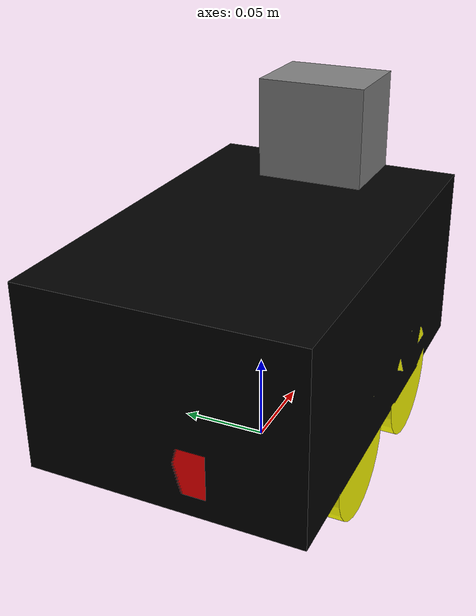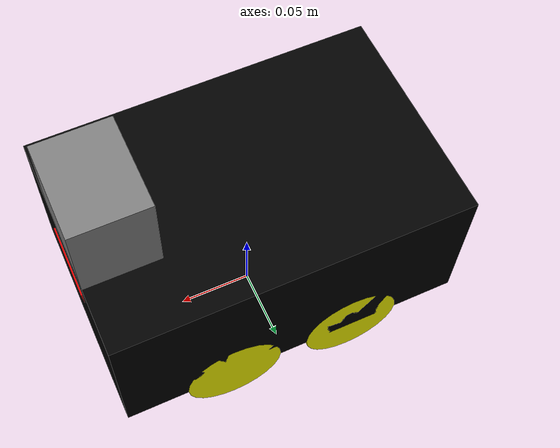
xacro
<?xml version="1.0"?>
<robot name="my_robot" xmlns:xacro="http://www.ros.org/wiki/xacro">

    <xacro:include filename="common_properties.xacro"/>
    <xacro:include filename="mobile_base.xacro"/>
    <xacro:include filename="mobile_base_gazebo.xacro"/>
    <xacro:include filename="camera.xacro"/>
    <xacro:include filename="ultrasonic_front.xacro"/>
    <xacro:include filename="ultrasonic_rear.xacro"/>
    <xacro:include filename="mpu_6050.xacro"/>

</robot>

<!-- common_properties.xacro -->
<robot xmlns:xacro="http://www.ros.org/wiki/xacro">

    <material name="blue">
        <color rgba="0 0 0.5 1" />
    </material>

    <material name="grey">
        <color rgba="0.5 0.5 0.5 1" />
    </material>

    <material name="black">
        <color rgba="0 0 0 1"/>
    </material>

    <material name="yellow">
        <color rgba="1 1 0 1"/>
    </material>

    <material name="red">
        <color rgba="1 0 0 1"/>
    </material>

    <xacro:macro name="box_inertia" params="m x y z o_xyz o_rpy">
        <inertial>
            <mass value="${m}" />
            <origin xyz="${o_xyz}" rpy="${o_rpy}" />
            <inertia ixx="${(m/12) * (y*y + z*z)}" ixy="0" ixz="0"
                     iyy="${(m/12) * (x*x + z*z)}" iyz="0"
                     izz="${(m/12) * (x*x + y*y)}" />
        </inertial>
    </xacro:macro>

    <xacro:macro name="cylinder_inertia" params="m r l o_xyz o_rpy">
        <inertial>
            <mass value="${m}" />
            <origin xyz="${o_xyz}" rpy="${o_rpy}" />
            <inertia ixx="${(m/12) * (3*r*r + l*l)}" ixy="0" ixz="0"
                     iyy="${(m/12) * (3*r*r + l*l)}" iyz="0"
                     izz="${(m/2) * (r*r)}" />
        </inertial>
    </xacro:macro>

    <xacro:macro name="sphere_inertia" params="m r o_xyz o_rpy">
        <inertial>
            <mass value="${m}" />
            <origin xyz="${o_xyz}" rpy="${o_rpy}" />
            <inertia ixx="${(2/5) * m * r * r}" ixy="0" ixz="0"
                     iyy="${(2/5) * m * r * r}" iyz="0"
                     izz="${(2/5) * m * r * r}" />
        </inertial>
    </xacro:macro>

</robot>

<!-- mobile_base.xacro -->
<robot xmlns:xacro="http://www.ros.org/wiki/xacro">

    <xacro:property name="base_length" value="0.235" />
    <xacro:property name="base_width" value="0.152" />
    <xacro:property name="base_height" value="0.105" />
    <xacro:property name="wheel_radius" value="0.033" />
    <xacro:property name="wheel_length" value="0.026" />

    <!-- Measured wheel centre locations for Elegoo Smart Robot Car Kit v4.0 -->
    <xacro:property name="wheel_center_from_ends" value="0.075" />
    <xacro:property name="wheel_x_front" value="${base_length/2.0 - wheel_center_from_ends}" />
    <xacro:property name="wheel_x_rear"  value="${-base_length/2.0 + wheel_center_from_ends}" />
    <xacro:property name="wheel_y" value="${base_width/2.0 - wheel_length/2.0}" />

    <xacro:property name="base_clearance" value="0.016" />
    <xacro:property name="wheel_z" value="${wheel_radius - base_clearance}" />
    <link name="base_footprint" />

    <link name="base_link">
        <visual>
            <geometry>
                <box size="${base_length} ${base_width} ${base_height}" />
            </geometry>
            <origin xyz="0 0 ${(base_height / 2.0) + 0.016}" rpy="0 0 0" />
            <material name="black" />
        </visual>

        <xacro:box_inertia m="5.0" x="${base_length}" y="${base_width}" z="${base_height}"
                           o_xyz="0 0 ${(base_height / 2.0) + 0.016}" o_rpy="0 0 0" />

        <collision>
            <geometry>
                <box size="${base_length} ${base_width} ${base_height}" />
            </geometry>
            <origin xyz="0 0 ${(base_height / 2.0) + 0.016}" rpy="0 0 0" />
        </collision>
    </link>

    <xacro:macro name="wheel_link" params="name">
        <link name="${name}">
            <visual>
                <geometry>
                    <cylinder radius="${wheel_radius}" length="${wheel_length}" />
                </geometry>
                <origin xyz="0 0 0" rpy="${pi / 2.0} 0 0" />
                <material name="yellow" />
            </visual>

            <xacro:cylinder_inertia m="1.0" r="${wheel_radius}" l="${wheel_length}"
                                    o_xyz="0 0 0" o_rpy="${pi / 2.0} 0 0" />

            <collision>
                <geometry>
                    <sphere radius="${wheel_radius}"/>
                </geometry>
                <origin xyz="0 0 0" rpy="0 0 0" />
            </collision>

        </link>
    </xacro:macro>

    <xacro:wheel_link name="front_left_wheel_link" />
    <xacro:wheel_link name="front_right_wheel_link" />
    <xacro:wheel_link name="rear_left_wheel_link" />
    <xacro:wheel_link name="rear_right_wheel_link" />

    <joint name="base_joint" type="fixed">
        <parent link="base_footprint" />
        <child link="base_link" />
        <origin xyz="0 0 ${base_clearance}" rpy="0 0 0"/>
    </joint>

    <joint name="front_left_wheel_joint" type="continuous">
        <parent link="base_link" />
        <child link="front_left_wheel_link" />
        <origin xyz="${wheel_x_front} ${wheel_y} ${wheel_z}" rpy="0 0 0" />
        <axis xyz="0 1 0" />
    </joint>

    <joint name="front_right_wheel_joint" type="continuous">
        <parent link="base_link" />
        <child link="front_right_wheel_link" />
        <origin xyz="${wheel_x_front} -${wheel_y} ${wheel_z}" rpy="0 0 0" />
        <axis xyz="0 1 0" />
    </joint>

    <joint name="rear_left_wheel_joint" type="continuous">
        <parent link="base_link" />
        <child link="rear_left_wheel_link" />
        <origin xyz="${wheel_x_rear}  ${wheel_y} ${wheel_z}" rpy="0 0 0" />
        <axis xyz="0 1 0" />
    </joint>

    <joint name="rear_right_wheel_joint" type="continuous">
        <parent link="base_link" />
        <child link="rear_right_wheel_link" />
        <origin xyz="${wheel_x_rear} -${wheel_y} ${wheel_z}" rpy="0 0 0" />
        <axis xyz="0 1 0" />
    </joint>

</robot>

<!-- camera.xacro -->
<robot xmlns:xacro="http://www.ros.org/wiki/xacro">

    <xacro:property name="camera_length" value="0.05" />
    <xacro:property name="camera_width" value="0.064" />
    <xacro:property name="camera_height" value="0.059" />

    <link name="camera_link">
        <visual>
            <geometry>
                <box size="${camera_length} ${camera_width} ${camera_height}" />
            </geometry>
            <material name="grey" />
        </visual>
        <collision>
            <geometry>
                <box size="${camera_length} ${camera_width} ${camera_height}" />
            </geometry>
        </collision>
        <xacro:box_inertia m="0.1" x="${camera_length}" y="${camera_width}" z="${camera_height}"
                           o_xyz="0 0 0" o_rpy="0 0 0" />
    </link>

    <joint name="base_camera_joint" type="fixed">
        <parent link="base_link" />
        <child link="camera_link" />
        <origin xyz="${(base_length/2.0) - (camera_length/2.0)} 0 ${base_height + base_clearance + (camera_height/2.0)}" rpy="0 0 0" />
    </joint>

    <link name="camera_link_optical" />

    <joint name="camera_optical_joint" type="fixed">
        <origin xyz="0 0 0" rpy="${-pi/2} 0 ${-pi/2}"/>
        <parent link="camera_link"/>
        <child link="camera_link_optical"/>
    </joint>

    <gazebo reference="camera_link">
        <sensor name="camera" type="camera">
            <camera>
                <horizontal_fov>1.3962634</horizontal_fov>
                <image>
                    <width>640</width>
                    <height>480</height>
                    <format>R8G8B8</format>
                </image>
                <clip>
                    <near>0.1</near>
                    <far>15</far>
                </clip>
                <noise>
                    <type>gaussian</type>
                    <mean>0.0</mean>
                    <stddev>0.007</stddev>
                </noise>
                <optical_frame_id>camera_link_optical</optical_frame_id>
                <camera_info_topic>camera/camera_info</camera_info_topic>
            </camera>
            <always_on>1</always_on>
            <update_rate>20</update_rate>
            <visualize>true</visualize>
            <topic>camera/image_raw</topic>

        </sensor>
    </gazebo>

</robot>

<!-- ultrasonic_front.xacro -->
<robot xmlns:xacro="http://www.ros.org/wiki/xacro">

    <xacro:property name="ultra_front_length" value="0.02"/>
    <xacro:property name="ultra_front_width"  value="0.05"/>
    <xacro:property name="ultra_front_height" value="0.025"/>
    <xacro:property name="ultra_front_min_range" value="0.02"/>
    <xacro:property name="ultra_front_max_range" value="4.25"/>
    <xacro:property name="ultra_front_range_resolution" value="0.01"/>
    <xacro:property name="ultra_front_half_fov_h" value="${60.0 * pi / 180.0}"/>

    <link name="ultrasonic_front_link">
        <visual>
            <geometry>
                <box size="${ultra_front_length} ${ultra_front_width} ${ultra_front_height}"/>
            </geometry>
            <material name="red"/>
        </visual>

        <collision>
            <geometry>
                <box size="${ultra_front_length} ${ultra_front_width} ${ultra_front_height}"/>
            </geometry>
        </collision>

        <xacro:box_inertia
            m="0.02"
            x="${ultra_front_length}"
            y="${ultra_front_width}"
            z="${ultra_front_height}"
            o_xyz="0 0 0"
            o_rpy="0 0 0" />
    </link>

    <joint name="base_ultrasonic_front_joint" type="fixed">
        <parent link="base_link"/>
        <child link="ultrasonic_front_link"/>
        <origin xyz="${(base_length/2.0) - (ultra_front_length/2.0)} 0 0.089" rpy="0 0.087266 0"/>
    </joint>

    <gazebo reference="ultrasonic_front_link">
        <sensor name="ultrasonic_front" type="gpu_lidar">
            <always_on>true</always_on>
            <update_rate>20</update_rate>
            <visualize>true</visualize>

            <lidar>
                <scan>
                    <horizontal>
                        <samples>1</samples>
                        <resolution>1</resolution>
                        <min_angle>${-ultra_front_half_fov_h}</min_angle>
                        <max_angle>${ultra_front_half_fov_h}</max_angle>
                    </horizontal>

                </scan>

                <range>
                    <min>${ultra_front_min_range}</min>
                    <max>${ultra_front_max_range}</max>
                    <resolution>${ultra_front_range_resolution}</resolution>
                </range>
                <noise>
                    <type>gaussian</type>
                    <mean>0.0</mean>
                    <stddev>0.01</stddev>
                </noise>
            </lidar>

            <topic>/ultrasonic_front</topic>

        </sensor>
    </gazebo>

</robot>

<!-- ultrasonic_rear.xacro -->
<robot xmlns:xacro="http://www.ros.org/wiki/xacro">

    <xacro:property name="ultra_rear_length" value="0.02"/>
    <xacro:property name="ultra_rear_width"  value="0.05"/>
    <xacro:property name="ultra_rear_height" value="0.025"/>
    <xacro:property name="ultra_rear_min_range" value="0.02"/>
    <xacro:property name="ultra_rear_max_range" value="4.25"/>
    <xacro:property name="ultra_rear_range_resolution" value="0.01"/>

    <link name="ultrasonic_rear_link">
        <visual>
            <geometry>
                <box size="${ultra_rear_length} ${ultra_rear_width} ${ultra_rear_height}"/>
            </geometry>
            <material name="red"/>
        </visual>

        <collision>
            <geometry>
                <box size="${ultra_rear_length} ${ultra_rear_width} ${ultra_rear_height}"/>
            </geometry>
        </collision>

        <xacro:box_inertia
            m="0.02"
            x="${ultra_rear_length}"
            y="${ultra_rear_width}"
            z="${ultra_rear_height}"
            o_xyz="0 0 0"
            o_rpy="0 0 0" />
    </link>

    <joint name="base_ultrasonic_rear_joint" type="fixed">
        <parent link="base_link"/>
        <child link="ultrasonic_rear_link"/>
        <origin xyz="${-(base_length/2.0) + (ultra_rear_length/2.0)} 0 0.04" rpy="0 0 3.14159"/>
    </joint>

    <gazebo reference="ultrasonic_rear_link">
        <sensor name="ultrasonic_rear" type="gpu_lidar">
            <always_on>true</always_on>
            <update_rate>20</update_rate>
            <visualize>true</visualize>

            <lidar>
                <scan>
                    <horizontal>
                        <samples>1</samples>
                        <resolution>1</resolution>
                        <min_angle>0</min_angle>
                        <max_angle>0</max_angle>
                    </horizontal>
                    <vertical>
                        <samples>1</samples>
                        <resolution>1</resolution>
                        <min_angle>0</min_angle>
                        <max_angle>0</max_angle>
                    </vertical>
                </scan>

                <range>
                    <min>${ultra_rear_min_range}</min>
                    <max>${ultra_rear_max_range}</max>
                    <resolution>${ultra_rear_range_resolution}</resolution>
                </range>
                <noise>
                    <type>gaussian</type>
                    <mean>0.0</mean>
                    <stddev>0.01</stddev>
                </noise>
            </lidar>

            <topic>/ultrasonic_rear</topic>

        </sensor>
    </gazebo>

</robot>

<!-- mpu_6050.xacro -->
<robot xmlns:xacro="http://www.ros.org/wiki/xacro">

    <xacro:property name="mpu_length" value="0.02"/>
    <xacro:property name="mpu_width" value="0.015"/>
    <xacro:property name="mpu_height" value="0.004"/>
    <xacro:property name="mpu_mass" value="0.005"/>
    <xacro:property name="mpu_topic" value="/imu"/>

    <link name="mpu_6050_link">
        <visual>
            <geometry>
                <box size="${mpu_length} ${mpu_width} ${mpu_height}"/>
            </geometry>
            <material name="grey"/>
        </visual>

        <collision>
            <geometry>
                <box size="${mpu_length} ${mpu_width} ${mpu_height}"/>
            </geometry>
        </collision>

        <xacro:box_inertia
            m="${mpu_mass}"
            x="${mpu_length}"
            y="${mpu_width}"
            z="${mpu_height}"
            o_xyz="0 0 0"
            o_rpy="0 0 0" />
    </link>

    <joint name="base_mpu_6050_joint" type="fixed">
        <parent link="base_link"/>
        <child link="mpu_6050_link"/>
        <origin xyz="0 ${ -(3 * mpu_width) } 0.07" rpy="0 0 0"/>
    </joint>

    <gazebo reference="mpu_6050_link">
        <sensor name="mpu_6050" type="imu">
            <always_on>true</always_on>
            <update_rate>100</update_rate>
            <visualize>false</visualize>
            <topic>${mpu_topic}</topic>

            <imu>
                <angular_velocity>
                    <x>
                        <noise type="gaussian">
                            <mean>0.0</mean>
                            <stddev>0.0002</stddev>
                        </noise>
                    </x>
                    <y>
                        <noise type="gaussian">
                            <mean>0.0</mean>
                            <stddev>0.0002</stddev>
                        </noise>
                    </y>
                    <z>
                        <noise type="gaussian">
                            <mean>0.0</mean>
                            <stddev>0.0002</stddev>
                        </noise>
                    </z>
                </angular_velocity>

                <linear_acceleration>
                    <x>
                        <noise type="gaussian">
                            <mean>0.0</mean>
                            <stddev>0.017</stddev>
                        </noise>
                    </x>
                    <y>
                        <noise type="gaussian">
                            <mean>0.0</mean>
                            <stddev>0.017</stddev>
                        </noise>
                    </y>
                    <z>
                        <noise type="gaussian">
                            <mean>0.0</mean>
                            <stddev>0.017</stddev>
                        </noise>
                    </z>
                </linear_acceleration>
            </imu>
        </sensor>
    </gazebo>

</robot>
